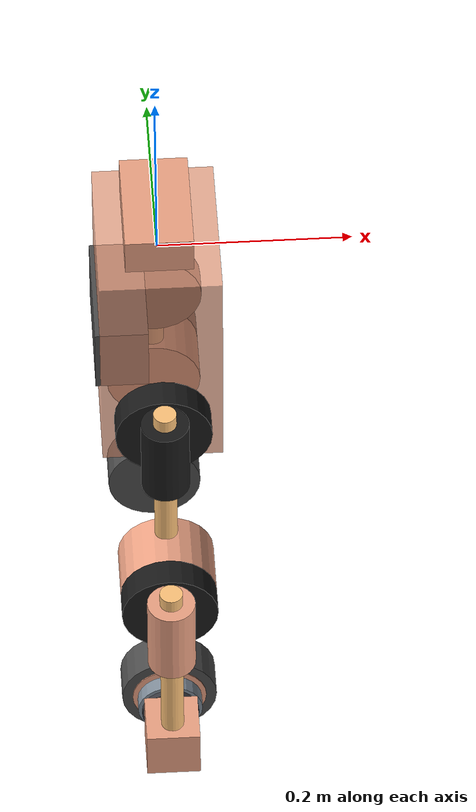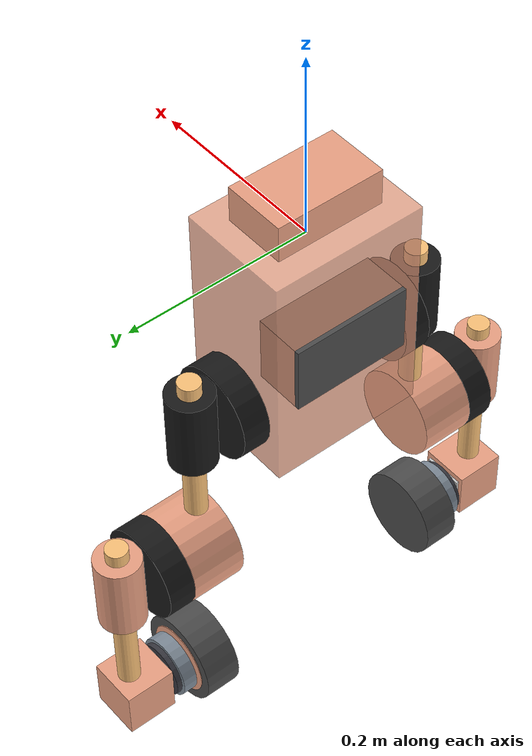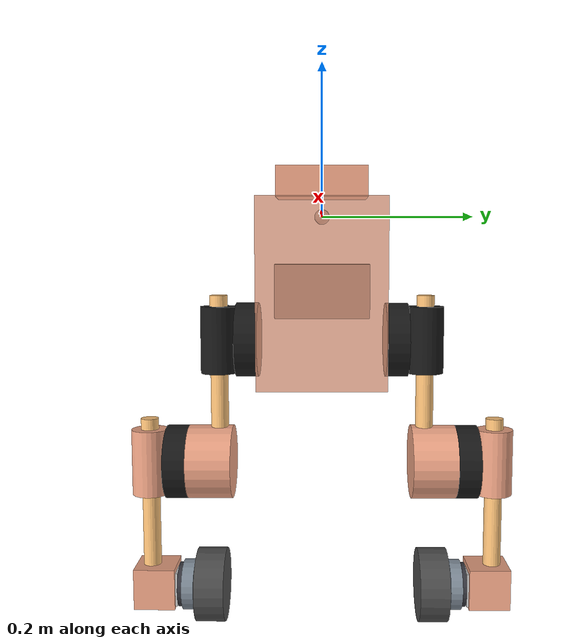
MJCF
<mujoco model="upkie">
    <compiler angle="radian" meshdir="meshes/" autolimits="true" />

    <worldbody>
        <body name="trunk">
            <site name="imu" size="0.01" pos="0.0 0.0 0.0" />

            <joint name="world_joint" type="free" limited="false" actuatorfrclimited="false" />
            <geom name="trunk_collision1" size="0.0625 0.085 0.125" pos="0 0 -0.1" type="box"
                rgba="0.93 0.64 0.52 0.8" />
            <geom name="trunk_collision2" size="0.065 0.037 0.0275" pos="-0.04 0 -0.1"
                quat="0.5 0.5 0.5 0.5" type="box" rgba="0.3 0.3 0.3 1" />
            <geom name="trunk_collision3" size="0.06 0.035 0.02" pos="0 0 0.045"
                quat="0.707107 0 0 -0.707107" type="box" rgba="0.93 0.64 0.52 1" />
            <geom size="0.05 0.015" pos="0 0.1 -0.164" quat="0.707107 -0.707107 0 0" type="cylinder"
                rgba="0.1 0.1 0.1 1" />
            <geom size="0.05 0.015" pos="0 -0.1 -0.164" quat="0 0 0.707107 -0.707107"
                type="cylinder" rgba="0.1 0.1 0.1 1" />
            <body name="left_femur" pos="0 0.1142 -0.164" quat="0.707107 -0.707107 0 0">
                <inertial pos="0 0.143655 0.0648064" quat="0.410908 0.57546 -0.57546 0.410908"
                    mass="0.69241" diaginertia="0.00305529 0.00296411 0.000644198" />
                <joint name="left_hip" pos="0 0 0" axis="0 0 -1" range="-1.26 1.26" damping="0.1" />
                <geom name="left_femur_collision1" size="0.023 0.0025" pos="0 0 -0.0025"
                    type="cylinder" rgba="0.1 0.1 0.1 1" />
                <geom name="left_femur_collision2" size="0.025 0.045" pos="0 0 0.025"
                    quat="0.5 -0.5 0.5 0.5" type="cylinder" rgba="0.1 0.1 0.1 1" />
                <geom name="left_femur_collision3" size="0.012 0.13" pos="0 0.07 0.025"
                    quat="0.707107 0.707107 0 0" type="cylinder" rgba="1 0.77 0.48 1" />
                <geom name="left_femur_collision4" size="0.05 0.03" pos="0 0.168 0.037"
                    quat="0 0.707107 0.707107 0" type="cylinder" rgba="0.93 0.64 0.52 1" />
                <geom name="left_femur_collision5" size="0.05 0.015" pos="0 0.168 0.082"
                    type="cylinder" rgba="0.1 0.1 0.1 1" />
                <body name="left_tibia" pos="0 0.168 0.0962">
                    <inertial pos="0 0.129919 0.000191464" quat="0.773688 0.633567 0 0"
                        mass="0.3954"
                        diaginertia="0.0022225 0.00219783 0.000264492" />
                    <joint name="left_knee" pos="0 0 0" axis="0 0 -1" range="-2.51 2.51"
                        damping="0.1" />
                    <geom name="left_tibia_collision1" size="0.023 0.0025" pos="0 0 -0.0025"
                        type="cylinder" rgba="0.1 0.1 0.1 1" />
                    <geom name="left_tibia_collision2" size="0.025 0.045" pos="0 0 0.025"
                        quat="0.5 -0.5 0.5 0.5" type="cylinder"
                        rgba="0.93 0.64 0.52 1" />
                    <geom name="left_tibia_collision3" size="0.012 0.13" pos="0 0.07 0.025"
                        quat="0 0 0.707107 -0.707107" type="cylinder"
                        rgba="1 0.77 0.48 1" />
                    <geom size="0.028 0.028 0.028" pos="0 0.173 0.0185"
                        quat="0 0 0 -1" type="box"
                        rgba="0.93 0.64 0.52 1" />
                    <geom size="0.023 0.023 0.002" pos="0 0.175 -0.0105" quat="0 0 0 -1" type="box"
                        rgba="0.8 0.8 0.8 1" />
                    <geom size="0.03 0.009" pos="0 0.175 -0.022" quat="0 0 -1 0" type="cylinder"
                        rgba="0.22 0.22 0.25 1" />
                    <body name="left_foot" pos="0 0.175 -0.012" quat="0 0 -1 0">
                        <site name="left_foot" rgba="1 0 0 1" pos="0.0 0.0 0.0" />
                        <inertial pos="0 0.000254674 0.0355348"
                            quat="0.497084 0.502899 -0.502899 0.497084"
                            mass="0.18455" diaginertia="0.000174567 0.000134472 0.000132269" />
                        <joint name="left_wheel" pos="0 0 0" axis="0 0 -1" damping="0.1" />
                        <geom size="0.034 0.008" pos="0 0 0.015" type="cylinder"
                            rgba="0.5 0.55 0.6 1" />
                        <geom size="0.039 0.0125" pos="0 0 0.0376" type="cylinder"
                            rgba="0.93 0.64 0.52 1" />
                        <geom name="left_foot_collision" size="0.05 0.02" pos="0 0 0.046"
                            type="cylinder" rgba="0.3 0.3 0.3 1" />
                    </body>
                </body>
            </body>
            <body name="right_femur" pos="0 -0.1142 -0.164" quat="0 0 0.707107 -0.707107">
                <inertial pos="0 0.143655 0.0648064" quat="0.410908 0.57546 -0.57546 0.410908"
                    mass="0.69241"
                    diaginertia="0.00305529 0.00296411 0.000644198" />
                <joint name="right_hip" pos="0 0 0" axis="0 0 -1" range="-1.26 1.26" damping="0.1" />
                <geom name="right_femur_collision1" size="0.023 0.0025" pos="0 0 -0.0025"
                    type="cylinder" rgba="0.1 0.1 0.1 1" />
                <geom name="right_femur_collision2" size="0.025 0.045" pos="0 0 0.025"
                    quat="0.5 -0.5 0.5 0.5" type="cylinder" rgba="0.1 0.1 0.1 1" />
                <geom name="right_femur_collision3" size="0.012 0.13" pos="0 0.07 0.025"
                    quat="0.707107 0.707107 0 0" type="cylinder"
                    rgba="1 0.77 0.48 1" />
                <geom name="right_femur_collision4" size="0.05 0.03" pos="0 0.168 0.037"
                    quat="0 0.707107 0.707107 0" type="cylinder"
                    rgba="0.93 0.64 0.52 1" />
                <geom name="right_femur_collision5" size="0.05 0.015" pos="0 0.168 0.082"
                    type="cylinder" rgba="0.1 0.1 0.1 1" />
                <body name="right_tibia" pos="0 0.168 0.0962">
                    <inertial pos="0 0.129919 0.000196523" quat="0.77365 0.633613 0 0" mass="0.3954"
                        diaginertia="0.00222226 0.00219775 0.000264334" />
                    <joint name="right_knee" pos="0 0 0" axis="0 0 -1" range="-2.51 2.51"
                        damping="0.1" />
                    <geom name="right_tibia_collision1" size="0.023 0.0025" pos="0 0 -0.0025"
                        type="cylinder" rgba="0.1 0.1 0.1 1" />
                    <geom name="right_tibia_collision2" size="0.025 0.045" pos="0 0 0.025"
                        quat="0.5 -0.5 0.5 0.5" type="cylinder"
                        rgba="0.93 0.64 0.52 1" />
                    <geom name="right_tibia_collision3" size="0.012 0.13" pos="0 0.07 0.025"
                        quat="0 0 0.707107 -0.707107" type="cylinder"
                        rgba="1 0.77 0.48 1" />
                    <geom size="0.028 0.028 0.028"
                        pos="0 0.173 0.0185" quat="0 0 0 -1" type="box"
                        rgba="0.93 0.64 0.52 1" />
                    <geom size="0.023 0.023 0.002" pos="0 0.175 -0.0105" quat="0 0 0 -1" type="box"
                        rgba="0.8 0.8 0.8 1" />
                    <geom size="0.03 0.009" pos="0 0.175 -0.022" quat="0 0 -1 0" type="cylinder"
                        rgba="0.22 0.22 0.25 1" />
                    <body name="right_foot" pos="0 0.175 -0.012" quat="0 0 -1 0">
                        <site name="right_foot" rgba="1 0 0 1" pos="0.0 0.0 0.0" />
                        <inertial pos="0 0.000254674 0.0355348"
                            quat="0.497084 0.502899 -0.502899 0.497084"
                            mass="0.18455" diaginertia="0.000174567 0.000134472 0.000132269" />
                        <joint name="right_wheel" pos="0 0 0" axis="0 0 -1" damping="0.1" />
                        <geom size="0.034 0.008" pos="0 0 0.015" type="cylinder"
                            rgba="0.5 0.55 0.6 1" />
                        <geom size="0.039 0.0125" pos="0 0 0.0376" type="cylinder"
                            rgba="0.93 0.64 0.52 1" />
                        <geom name="right_foot_collision" size="0.05 0.02" pos="0 0 0.046"
                            type="cylinder" rgba="0.3 0.3 0.3 1" />
                    </body>
                </body>
            </body>
        </body>
    </worldbody>

    <actuator>
        <position joint="left_hip" name="left_hip" kp="3" kv="0.1" ctrlrange="-1.26 1.26"
            forcerange="-16 16" />
        <position joint="left_knee" name="left_knee" kp="3" kv="0.1" ctrlrange="-2.51 2.51"
            forcerange="-16 16" />
        <velocity joint="left_wheel" name="left_wheel" kv="5" forcerange="-1.7 1.7" />

        <position joint="right_hip" name="right_hip" kp="3" kv="0.1" ctrlrange="-1.26 1.26"
            forcerange="-16 16" />
        <position joint="right_knee" name="right_knee" kp="3" kv="0.1" ctrlrange="-2.51 2.51"
            forcerange="-16 16" />
        <velocity joint="right_wheel" name="right_wheel" kv="5" forcerange="-1.7 1.7" />
    </actuator>

    <sensor>
        <framequat name="imu_quat" objtype="site" objname="imu" />
        <gyro name="imu_ang_vel" site="imu" />
        <velocimeter name="imu_lin_vel" site="imu" />
    </sensor>

</mujoco>
